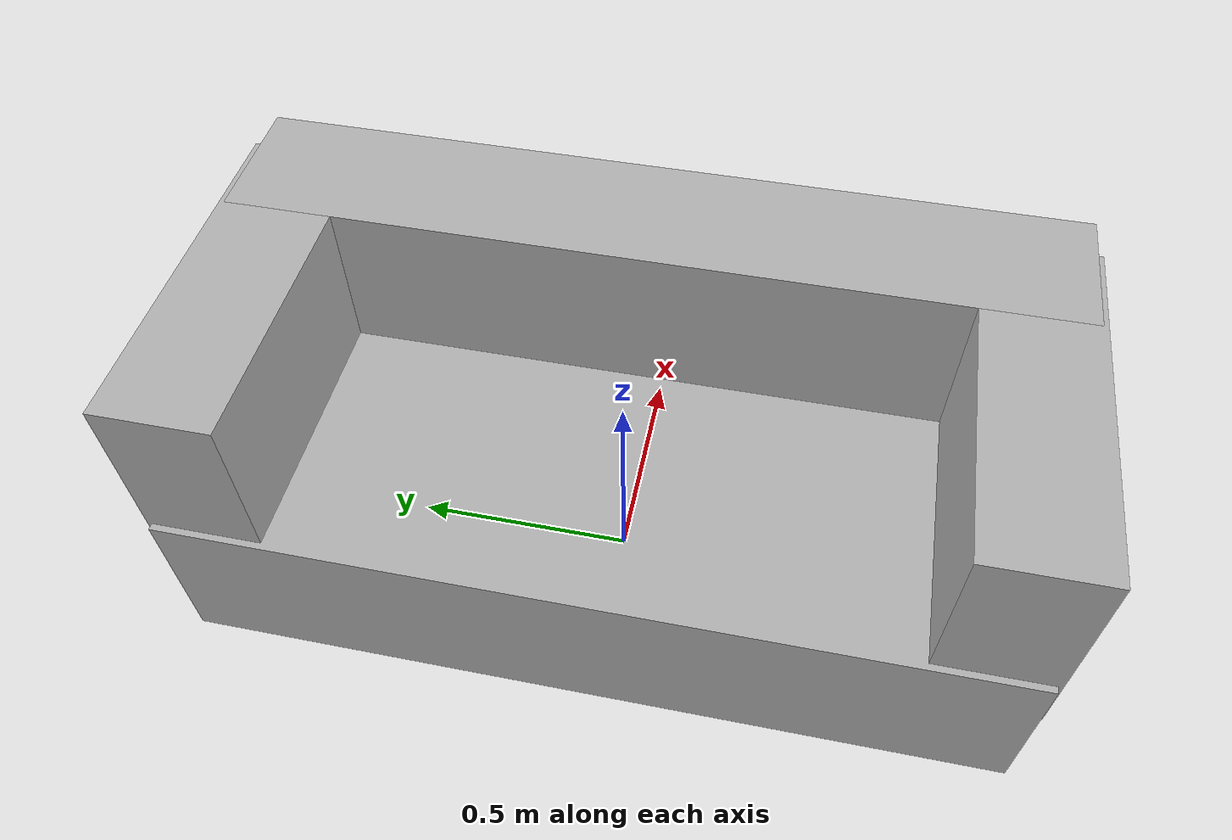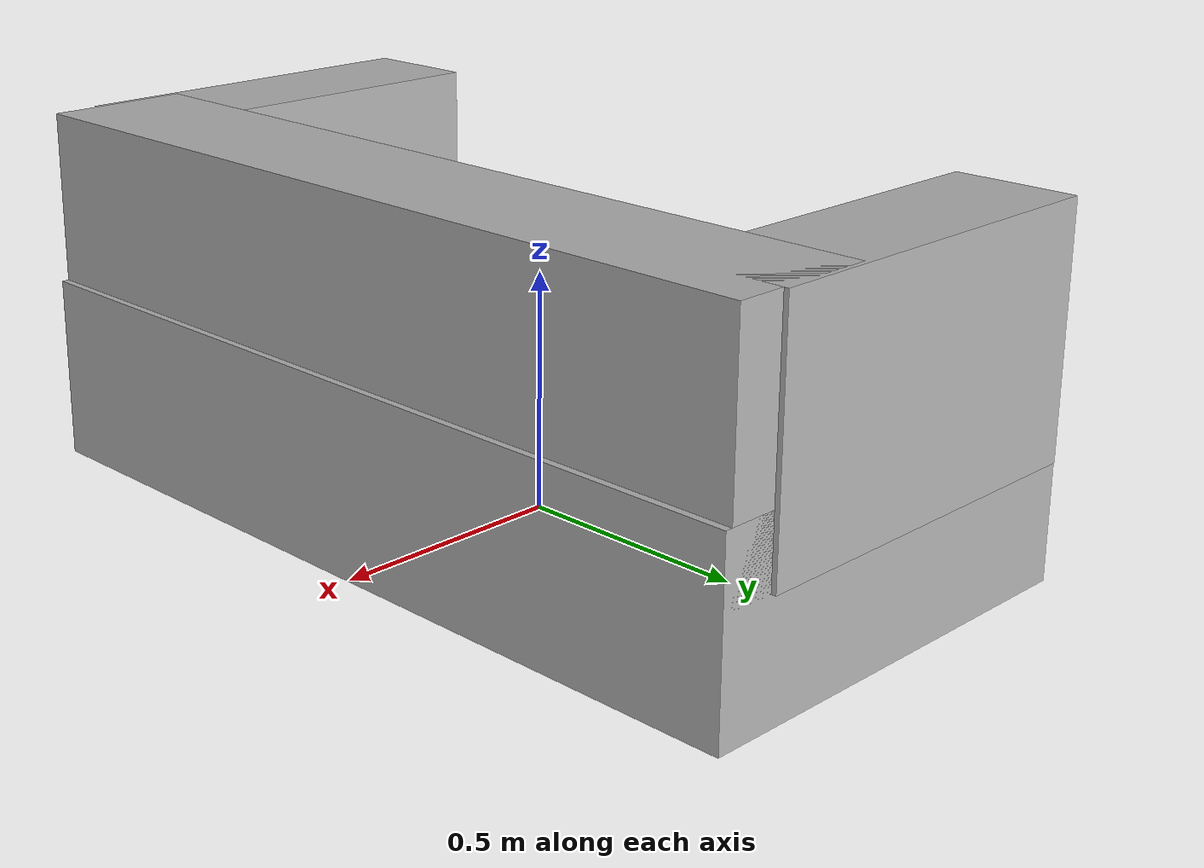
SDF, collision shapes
<?xml version='1.0'?>
<sdf version='1.6'>
  <model name='sofa'>
    <link name='link_0'>
      <pose frame=''>0 0 0 0 -0 0</pose>
      <inertial>
        <mass>20</mass>
        <pose frame=''>0.05 0.02 0.35 0 0 0</pose>
        <inertia>
          <ixx>6.5189973924</ixx>
          <ixy>0</ixy>
          <ixz>0</ixz>
          <iyy>2.3789990484</iyy>
          <iyz>0</iyz>
          <izz>7.0229971908</izz>
        </inertia>
      </inertial>
      <visual name='visual'>
        <pose frame=''>0 0 0 0 -0 0</pose>
        <geometry>
          <mesh>
            <uri>file://isr-testbed/sofa/sofa.dae</uri>
            <scale>1 1 1</scale>
          </mesh>
        </geometry>
        <material>
          <lighting>1</lighting>
          <script>
            <uri>file://media/materials/scripts/gazebo.material</uri>
            <name>Gazebo/DepthMapVS</name>
          </script>
          <ambient>0.3 0.3 0.3 1</ambient>
          <diffuse>0.7 0.7 0.7 1</diffuse>
          <specular>0.01 0.01 0.01 1</specular>
          <emissive>0 0 0 1</emissive>
        </material>
        <cast_shadows>1</cast_shadows>
        <transparency>0</transparency>
      </visual>
      <collision name='collision'>
        <laser_retro>0</laser_retro>
        <max_contacts>10</max_contacts>
        <pose frame=''>0.05 0 0.2 0 0 0</pose>
        <geometry>
          <box>
            <size>0.93 1.83 0.385</size>
          </box>
        </geometry>
        <surface>
          <friction>
            <ode>
              <mu>1</mu>
              <mu2>1</mu2>
              <fdir1>0 0 0</fdir1>
              <slip1>0</slip1>
              <slip2>0</slip2>
            </ode>
            <torsional>
              <coefficient>1</coefficient>
              <patch_radius>0</patch_radius>
              <surface_radius>0</surface_radius>
              <use_patch_radius>1</use_patch_radius>
              <ode>
                <slip>0</slip>
              </ode>
            </torsional>
          </friction>
          <bounce>
            <restitution_coefficient>0</restitution_coefficient>
            <threshold>1e+06</threshold>
          </bounce>
          <contact>
            <collide_without_contact>0</collide_without_contact>
            <collide_without_contact_bitmask>1</collide_without_contact_bitmask>
            <collide_bitmask>1</collide_bitmask>
            <ode>
              <soft_cfm>0</soft_cfm>
              <soft_erp>0.2</soft_erp>
              <kp>1e+13</kp>
              <kd>1</kd>
              <max_vel>0.01</max_vel>
              <min_depth>0</min_depth>
            </ode>
            <bullet>
              <split_impulse>1</split_impulse>
              <split_impulse_penetration_threshold>-0.01</split_impulse_penetration_threshold>
              <soft_cfm>0</soft_cfm>
              <soft_erp>0.2</soft_erp>
              <kp>1e+13</kp>
              <kd>1</kd>
            </bullet>
          </contact>
        </surface>
      </collision>
      <collision name='collision_back'>
        <laser_retro>0</laser_retro>
        <max_contacts>10</max_contacts>
        <pose frame=''>0.35 0 0.5 0 0 0</pose>
        <geometry>
          <box>
            <size>0.3 1.83 0.5</size>
          </box>
        </geometry>
        <surface>
          <friction>
            <ode>
              <mu>1</mu>
              <mu2>1</mu2>
              <fdir1>0 0 0</fdir1>
              <slip1>0</slip1>
              <slip2>0</slip2>
            </ode>
            <torsional>
              <coefficient>1</coefficient>
              <patch_radius>0</patch_radius>
              <surface_radius>0</surface_radius>
              <use_patch_radius>1</use_patch_radius>
              <ode>
                <slip>0</slip>
              </ode>
            </torsional>
          </friction>
          <bounce>
            <restitution_coefficient>0</restitution_coefficient>
            <threshold>1e+06</threshold>
          </bounce>
          <contact>
            <collide_without_contact>0</collide_without_contact>
            <collide_without_contact_bitmask>1</collide_without_contact_bitmask>
            <collide_bitmask>1</collide_bitmask>
            <ode>
              <soft_cfm>0</soft_cfm>
              <soft_erp>0.2</soft_erp>
              <kp>1e+13</kp>
              <kd>1</kd>
              <max_vel>0.01</max_vel>
              <min_depth>0</min_depth>
            </ode>
            <bullet>
              <split_impulse>1</split_impulse>
              <split_impulse_penetration_threshold>-0.01</split_impulse_penetration_threshold>
              <soft_cfm>0</soft_cfm>
              <soft_erp>0.2</soft_erp>
              <kp>1e+13</kp>
              <kd>1</kd>
            </bullet>
          </contact>
        </surface>
      </collision>
      <collision name='collision_arm_left'>
        <laser_retro>0</laser_retro>
        <max_contacts>10</max_contacts>
        <pose frame=''>0 -0.8 0.5 0 0 0</pose>
        <geometry>
          <box>
            <size>0.8 0.25 0.5</size>
          </box>
        </geometry>
        <surface>
          <friction>
            <ode>
              <mu>1</mu>
              <mu2>1</mu2>
              <fdir1>0 0 0</fdir1>
              <slip1>0</slip1>
              <slip2>0</slip2>
            </ode>
            <torsional>
              <coefficient>1</coefficient>
              <patch_radius>0</patch_radius>
              <surface_radius>0</surface_radius>
              <use_patch_radius>1</use_patch_radius>
              <ode>
                <slip>0</slip>
              </ode>
            </torsional>
          </friction>
          <bounce>
            <restitution_coefficient>0</restitution_coefficient>
            <threshold>1e+06</threshold>
          </bounce>
          <contact>
            <collide_without_contact>0</collide_without_contact>
            <collide_without_contact_bitmask>1</collide_without_contact_bitmask>
            <collide_bitmask>1</collide_bitmask>
            <ode>
              <soft_cfm>0</soft_cfm>
              <soft_erp>0.2</soft_erp>
              <kp>1e+13</kp>
              <kd>1</kd>
              <max_vel>0.01</max_vel>
              <min_depth>0</min_depth>
            </ode>
            <bullet>
              <split_impulse>1</split_impulse>
              <split_impulse_penetration_threshold>-0.01</split_impulse_penetration_threshold>
              <soft_cfm>0</soft_cfm>
              <soft_erp>0.2</soft_erp>
              <kp>1e+13</kp>
              <kd>1</kd>
            </bullet>
          </contact>
        </surface>
      </collision>
      <collision name='collision_arm_right'>
        <laser_retro>0</laser_retro>
        <max_contacts>10</max_contacts>
        <pose frame=''>0 0.8 0.5 0 0 0</pose>
        <geometry>
          <box>
            <size>0.8 0.25 0.5</size>
          </box>
        </geometry>
        <surface>
          <friction>
            <ode>
              <mu>1</mu>
              <mu2>1</mu2>
              <fdir1>0 0 0</fdir1>
              <slip1>0</slip1>
              <slip2>0</slip2>
            </ode>
            <torsional>
              <coefficient>1</coefficient>
              <patch_radius>0</patch_radius>
              <surface_radius>0</surface_radius>
              <use_patch_radius>1</use_patch_radius>
              <ode>
                <slip>0</slip>
              </ode>
            </torsional>
          </friction>
          <bounce>
            <restitution_coefficient>0</restitution_coefficient>
            <threshold>1e+06</threshold>
          </bounce>
          <contact>
            <collide_without_contact>0</collide_without_contact>
            <collide_without_contact_bitmask>1</collide_without_contact_bitmask>
            <collide_bitmask>1</collide_bitmask>
            <ode>
              <soft_cfm>0</soft_cfm>
              <soft_erp>0.2</soft_erp>
              <kp>1e+13</kp>
              <kd>1</kd>
              <max_vel>0.01</max_vel>
              <min_depth>0</min_depth>
            </ode>
            <bullet>
              <split_impulse>1</split_impulse>
              <split_impulse_penetration_threshold>-0.01</split_impulse_penetration_threshold>
              <soft_cfm>0</soft_cfm>
              <soft_erp>0.2</soft_erp>
              <kp>1e+13</kp>
              <kd>1</kd>
            </bullet>
          </contact>
        </surface>
      </collision>
    </link>
    <static>0</static>
    <allow_auto_disable>1</allow_auto_disable>
  </model>
</sdf>
